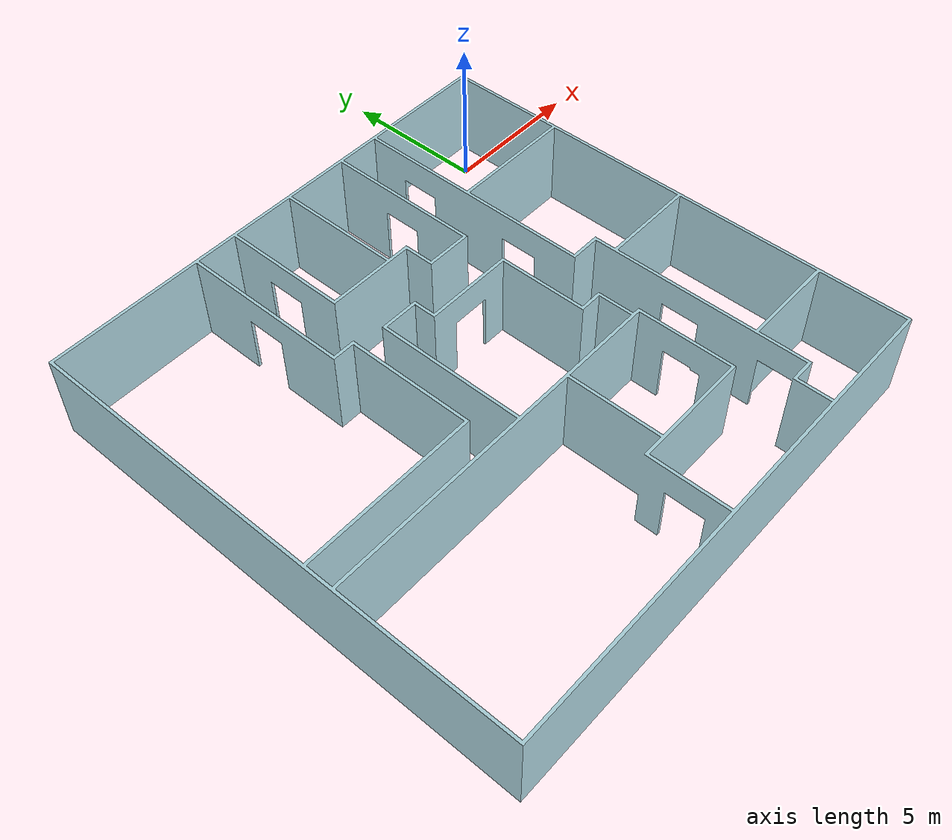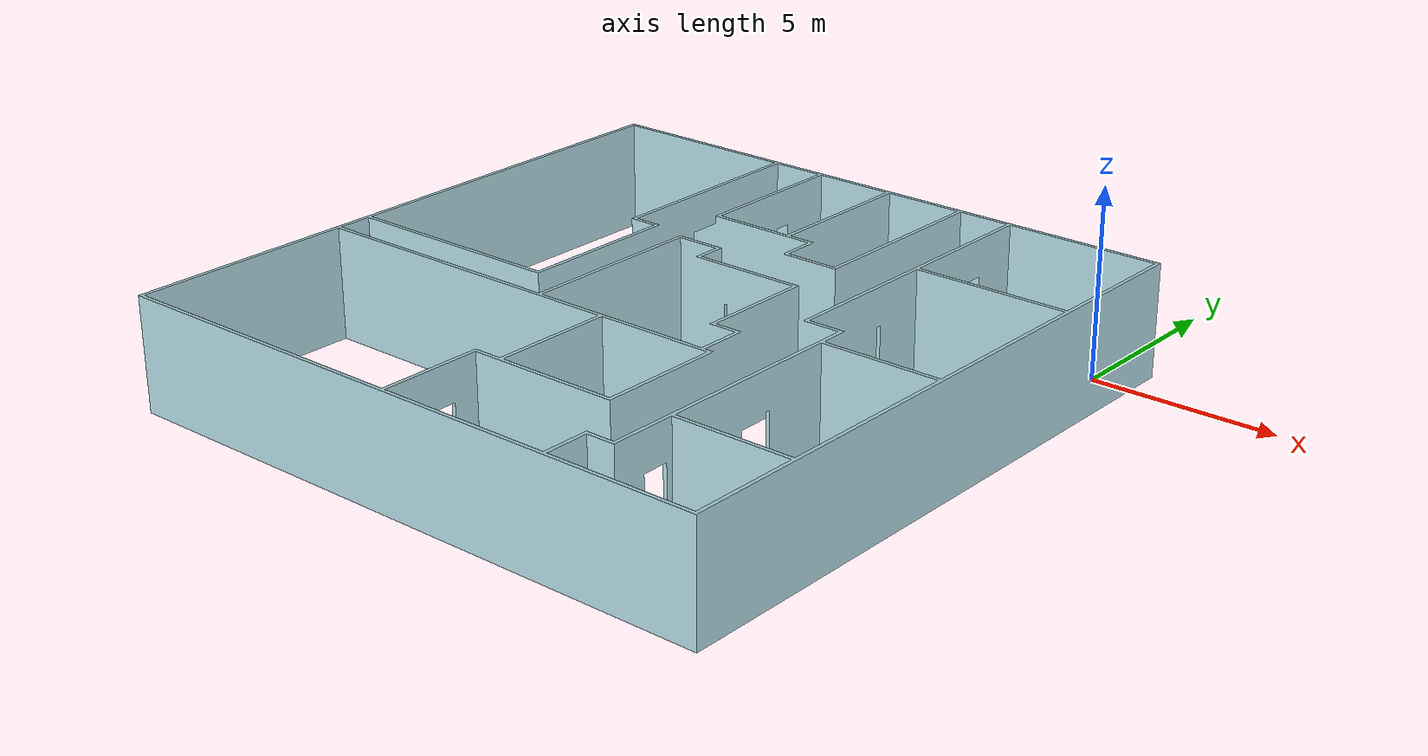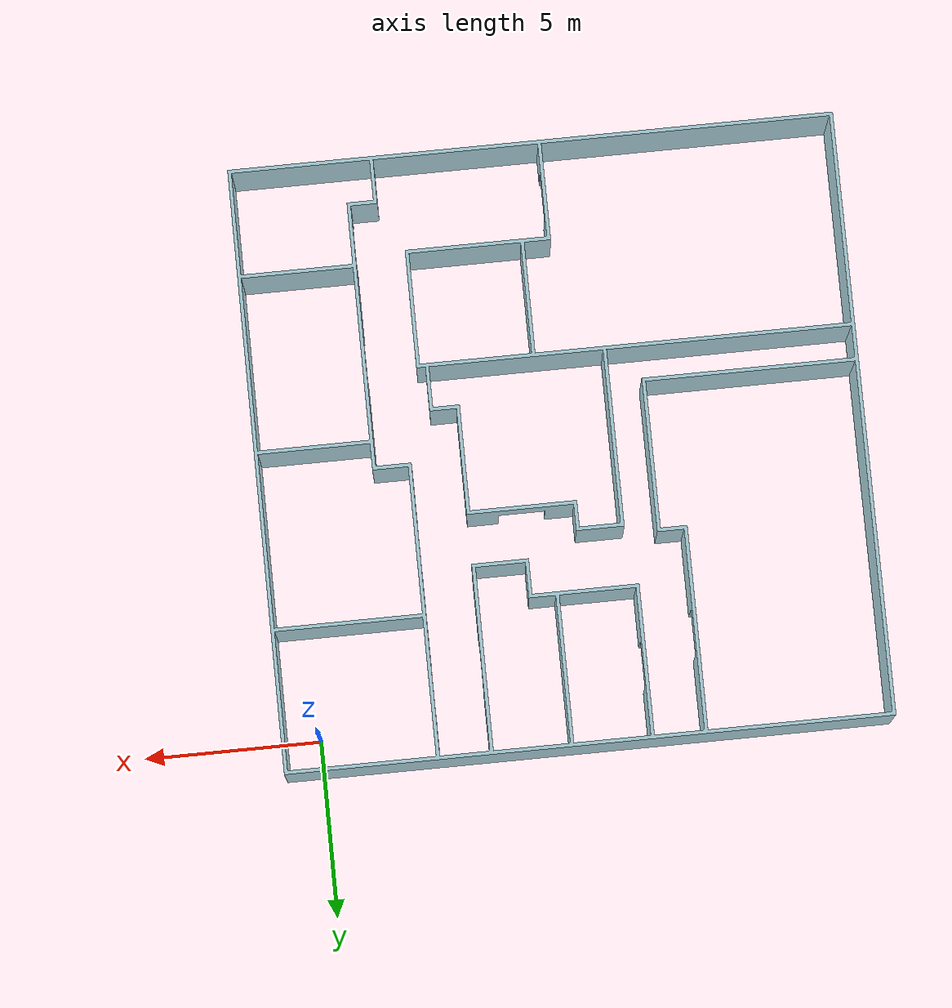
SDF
<?xml version="1.0" ?>
<sdf version="1.6">
  <world name="default">
    <include>
      <uri>model://sun</uri>
    </include>
    <include>
      <uri>model://floor82</uri>
    </include>
    <plugin name="ros_interface_plugin" filename="librotors_gazebo_ros_interface_plugin.so"/>

    <spherical_coordinates>
      <surface_model>EARTH_WGS84</surface_model>
      <latitude_deg>47.3667</latitude_deg>
      <longitude_deg>8.5500</longitude_deg>
      <elevation>500.0</elevation>
      <heading_deg>0</heading_deg>
    </spherical_coordinates>
    <physics type='ode'>
      <ode>
        <solver>
          <type>quick</type>
          <iters>1000</iters>
          <sor>1.3</sor>
        </solver>
        <constraints>
          <cfm>0</cfm>
          <erp>0.2</erp>
          <contact_max_correcting_vel>100</contact_max_correcting_vel>
          <contact_surface_layer>0.001</contact_surface_layer>
        </constraints>
      </ode>
      <max_step_size>0.001</max_step_size>
      <real_time_factor>1</real_time_factor>
      <real_time_update_rate>1000</real_time_update_rate>
      <gravity>0 0 -9.8</gravity>
    </physics>
  </world>
</sdf>

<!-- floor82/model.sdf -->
<sdf version="1.6">
    <model name="floor82">
        <static>true</static>
        <link name="link">
            <inertial>
                <pose>51.302 -2.2669 48.867 0 0 0</pose>
                <mass>6533600</mass>
                <inertia>
                    <ixx>1035800000</ixx>
                    <ixy>-1256500</ixy>
                    <ixz>69592000</ixz>
                    <iyy>2757500000</iyy>
                    <iyz>-11134000.0000001</iyz>
                    <izz>1760700000</izz>
                </inertia>
            </inertial>
            <collision name="collision">
                <geometry>
                    <mesh>
                        <uri>model://floor82/floorplan82.dae</uri>
                    </mesh>
                </geometry>
            </collision>
            <visual name="visual">
                <geometry>
                    <mesh>
                        <uri>model://floor82/floorplan82.dae</uri>
                    </mesh>
                </geometry>
            </visual>
        </link>
    </model>
</sdf>
